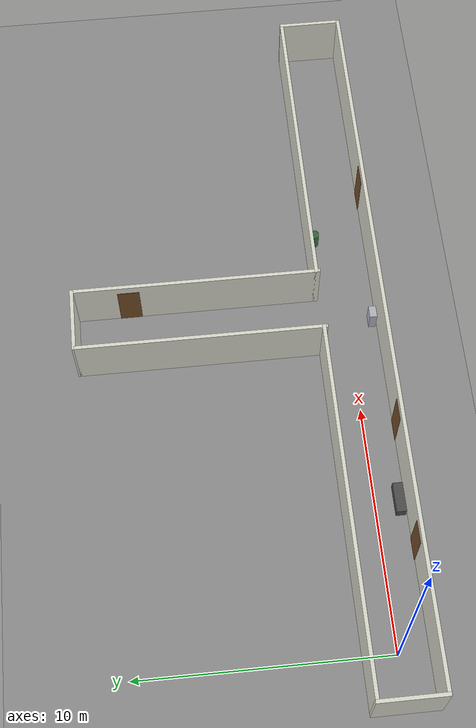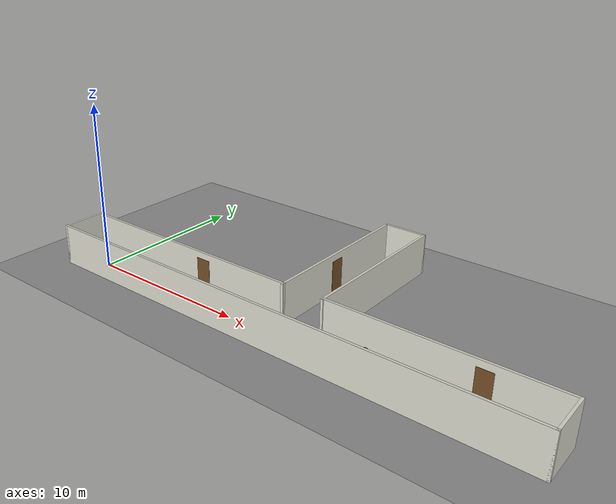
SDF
<?xml version="1.0"?>
<!-- Generated hallway world for C.A.$.H. Main corridor along +x (2.4 m wide, 30 m long)
     with a branch going +y at x=14. Robot spawns at the origin facing +x. -->
<sdf version="1.9">
  <world name="hallway">
    <physics name="1ms" type="ignored">
      <max_step_size>0.001</max_step_size>
      <real_time_factor>1.0</real_time_factor>
    </physics>

    <plugin filename="gz-sim-physics-system" name="gz::sim::systems::Physics"/>
    <plugin filename="gz-sim-user-commands-system" name="gz::sim::systems::UserCommands"/>
    <plugin filename="gz-sim-scene-broadcaster-system" name="gz::sim::systems::SceneBroadcaster"/>
    <plugin filename="gz-sim-sensors-system" name="gz::sim::systems::Sensors">
      <render_engine>ogre2</render_engine>
    </plugin>

    <gui fullscreen="0">
      <plugin filename="MinimalScene" name="3D View">
        <gz-gui>
          <title>3D View</title>
          <property type="bool" key="showTitleBar">false</property>
          <property type="string" key="state">docked</property>
        </gz-gui>
        <engine>ogre2</engine>
        <scene>scene</scene>
        <ambient_light>0.5 0.5 0.5</ambient_light>
        <background_color>0.8 0.8 0.8</background_color>
        <camera_pose>-6 -6 8 0 0.6 0.8</camera_pose>
      </plugin>
      <plugin filename="GzSceneManager" name="Scene Manager">
        <gz-gui><property key="state" type="string">floating</property><property key="width" type="double">5</property><property key="height" type="double">5</property><property key="showTitleBar" type="bool">false</property></gz-gui>
      </plugin>
      <plugin filename="InteractiveViewControl" name="Interactive view control">
        <gz-gui><property key="state" type="string">floating</property><property key="width" type="double">5</property><property key="height" type="double">5</property><property key="showTitleBar" type="bool">false</property></gz-gui>
      </plugin>
      <plugin filename="CameraTracking" name="Camera Tracking">
        <gz-gui><property key="state" type="string">floating</property><property key="width" type="double">5</property><property key="height" type="double">5</property><property key="showTitleBar" type="bool">false</property></gz-gui>
      </plugin>
      <plugin filename="WorldControl" name="World control">
        <gz-gui>
          <title>World control</title>
          <property type="bool" key="showTitleBar">false</property>
          <property type="bool" key="resizable">false</property>
          <property type="double" key="height">72</property>
          <property type="double" key="z">1</property>
          <property type="string" key="state">floating</property>
          <anchors target="3D View"><line own="left" target="left"/><line own="bottom" target="bottom"/></anchors>
        </gz-gui>
        <play_pause>true</play_pause>
        <step>true</step>
        <start_paused>false</start_paused>
      </plugin>
      <plugin filename="WorldStats" name="World stats">
        <gz-gui>
          <title>World stats</title>
          <property type="bool" key="showTitleBar">false</property>
          <property type="bool" key="resizable">false</property>
          <property type="double" key="height">110</property>
          <property type="double" key="width">290</property>
          <property type="double" key="z">1</property>
          <property type="string" key="state">floating</property>
          <anchors target="3D View"><line own="right" target="right"/><line own="bottom" target="bottom"/></anchors>
        </gz-gui>
        <sim_time>true</sim_time>
        <real_time>true</real_time>
        <real_time_factor>true</real_time_factor>
        <iterations>true</iterations>
      </plugin>
      <plugin filename="EntityTree" name="Entity tree"/>
      <plugin filename="VisualizeLidar" name="Visualize Lidar"/>
    </gui>

    <light type="directional" name="sun">
      <cast_shadows>false</cast_shadows>
      <pose>0 0 10 0 0 0</pose>
      <diffuse>0.9 0.9 0.9 1</diffuse>
      <specular>0.2 0.2 0.2 1</specular>
      <direction>-0.3 0.2 -0.9</direction>
    </light>

    <model name="floor">
      <static>true</static>
      <link name="link">
        <collision name="collision">
          <geometry><plane><normal>0 0 1</normal><size>80 80</size></plane></geometry>
        </collision>
        <visual name="visual">
          <geometry><plane><normal>0 0 1</normal><size>80 80</size></plane></geometry>
          <material><ambient>0.55 0.55 0.55 1</ambient><diffuse>0.55 0.55 0.55 1</diffuse></material>
        </visual>
      </link>
    </model>

    <model name="wall_south">
      <static>true</static>
      <pose>13.000 -1.275 1.250 0 0 0</pose>
      <link name="link">
        <collision name="collision"><geometry><box><size>30.300 0.150 2.500</size></box></geometry></collision>
        <visual name="visual">
          <geometry><box><size>30.300 0.150 2.500</size></box></geometry>
          <material><ambient>0.85 0.85 0.80 1</ambient><diffuse>0.85 0.85 0.80 1</diffuse></material>
        </visual>
      </link>
    </model>
    <model name="wall_north_a">
      <static>true</static>
      <pose>5.400 1.275 1.250 0 0 0</pose>
      <link name="link">
        <collision name="collision"><geometry><box><size>14.800 0.150 2.500</size></box></geometry></collision>
        <visual name="visual">
          <geometry><box><size>14.800 0.150 2.500</size></box></geometry>
          <material><ambient>0.85 0.85 0.80 1</ambient><diffuse>0.85 0.85 0.80 1</diffuse></material>
        </visual>
      </link>
    </model>
    <model name="wall_north_b">
      <static>true</static>
      <pose>21.600 1.275 1.250 0 0 0</pose>
      <link name="link">
        <collision name="collision"><geometry><box><size>12.800 0.150 2.500</size></box></geometry></collision>
        <visual name="visual">
          <geometry><box><size>12.800 0.150 2.500</size></box></geometry>
          <material><ambient>0.85 0.85 0.80 1</ambient><diffuse>0.85 0.85 0.80 1</diffuse></material>
        </visual>
      </link>
    </model>
    <model name="wall_west">
      <static>true</static>
      <pose>-2.075 0.000 1.250 0 0 0</pose>
      <link name="link">
        <collision name="collision"><geometry><box><size>0.150 2.700 2.500</size></box></geometry></collision>
        <visual name="visual">
          <geometry><box><size>0.150 2.700 2.500</size></box></geometry>
          <material><ambient>0.85 0.85 0.80 1</ambient><diffuse>0.85 0.85 0.80 1</diffuse></material>
        </visual>
      </link>
    </model>
    <model name="wall_east">
      <static>true</static>
      <pose>28.075 0.000 1.250 0 0 0</pose>
      <link name="link">
        <collision name="collision"><geometry><box><size>0.150 2.700 2.500</size></box></geometry></collision>
        <visual name="visual">
          <geometry><box><size>0.150 2.700 2.500</size></box></geometry>
          <material><ambient>0.85 0.85 0.80 1</ambient><diffuse>0.85 0.85 0.80 1</diffuse></material>
        </visual>
      </link>
    </model>
    <model name="branch_west">
      <static>true</static>
      <pose>12.725 6.200 1.250 0 0 0</pose>
      <link name="link">
        <collision name="collision"><geometry><box><size>0.150 10.150 2.500</size></box></geometry></collision>
        <visual name="visual">
          <geometry><box><size>0.150 10.150 2.500</size></box></geometry>
          <material><ambient>0.85 0.85 0.80 1</ambient><diffuse>0.85 0.85 0.80 1</diffuse></material>
        </visual>
      </link>
    </model>
    <model name="branch_east">
      <static>true</static>
      <pose>15.275 6.200 1.250 0 0 0</pose>
      <link name="link">
        <collision name="collision"><geometry><box><size>0.150 10.150 2.500</size></box></geometry></collision>
        <visual name="visual">
          <geometry><box><size>0.150 10.150 2.500</size></box></geometry>
          <material><ambient>0.85 0.85 0.80 1</ambient><diffuse>0.85 0.85 0.80 1</diffuse></material>
        </visual>
      </link>
    </model>
    <model name="branch_end">
      <static>true</static>
      <pose>14.000 11.275 1.250 0 0 0</pose>
      <link name="link">
        <collision name="collision"><geometry><box><size>2.700 0.150 2.500</size></box></geometry></collision>
        <visual name="visual">
          <geometry><box><size>2.700 0.150 2.500</size></box></geometry>
          <material><ambient>0.85 0.85 0.80 1</ambient><diffuse>0.85 0.85 0.80 1</diffuse></material>
        </visual>
      </link>
    </model>
    <model name="door_101">
      <static>true</static>
      <pose>4.000 -1.190 1.050 0 0 0</pose>
      <link name="link">
        <collision name="collision"><geometry><box><size>0.900 0.020 2.100</size></box></geometry></collision>
        <visual name="visual">
          <geometry><box><size>0.900 0.020 2.100</size></box></geometry>
          <material><ambient>0.45 0.30 0.15 1</ambient><diffuse>0.45 0.30 0.15 1</diffuse></material>
        </visual>
      </link>
    </model>
    <model name="door_102">
      <static>true</static>
      <pose>9.000 -1.190 1.050 0 0 0</pose>
      <link name="link">
        <collision name="collision"><geometry><box><size>0.900 0.020 2.100</size></box></geometry></collision>
        <visual name="visual">
          <geometry><box><size>0.900 0.020 2.100</size></box></geometry>
          <material><ambient>0.45 0.30 0.15 1</ambient><diffuse>0.45 0.30 0.15 1</diffuse></material>
        </visual>
      </link>
    </model>
    <model name="door_103">
      <static>true</static>
      <pose>20.000 -1.190 1.050 0 0 0</pose>
      <link name="link">
        <collision name="collision"><geometry><box><size>0.900 0.020 2.100</size></box></geometry></collision>
        <visual name="visual">
          <geometry><box><size>0.900 0.020 2.100</size></box></geometry>
          <material><ambient>0.45 0.30 0.15 1</ambient><diffuse>0.45 0.30 0.15 1</diffuse></material>
        </visual>
      </link>
    </model>
    <model name="door_104">
      <static>true</static>
      <pose>24.000 1.190 1.050 0 0 0</pose>
      <link name="link">
        <collision name="collision"><geometry><box><size>0.900 0.020 2.100</size></box></geometry></collision>
        <visual name="visual">
          <geometry><box><size>0.900 0.020 2.100</size></box></geometry>
          <material><ambient>0.45 0.30 0.15 1</ambient><diffuse>0.45 0.30 0.15 1</diffuse></material>
        </visual>
      </link>
    </model>
    <model name="door_105">
      <static>true</static>
      <pose>7.000 1.190 1.050 0 0 0</pose>
      <link name="link">
        <collision name="collision"><geometry><box><size>0.900 0.020 2.100</size></box></geometry></collision>
        <visual name="visual">
          <geometry><box><size>0.900 0.020 2.100</size></box></geometry>
          <material><ambient>0.45 0.30 0.15 1</ambient><diffuse>0.45 0.30 0.15 1</diffuse></material>
        </visual>
      </link>
    </model>
    <model name="door_201">
      <static>true</static>
      <pose>12.810 6.000 1.050 0 0 0</pose>
      <link name="link">
        <collision name="collision"><geometry><box><size>0.020 0.900 2.100</size></box></geometry></collision>
        <visual name="visual">
          <geometry><box><size>0.020 0.900 2.100</size></box></geometry>
          <material><ambient>0.45 0.30 0.15 1</ambient><diffuse>0.45 0.30 0.15 1</diffuse></material>
        </visual>
      </link>
    </model>
    <model name="door_202">
      <static>true</static>
      <pose>15.190 9.000 1.050 0 0 0</pose>
      <link name="link">
        <collision name="collision"><geometry><box><size>0.020 0.900 2.100</size></box></geometry></collision>
        <visual name="visual">
          <geometry><box><size>0.020 0.900 2.100</size></box></geometry>
          <material><ambient>0.45 0.30 0.15 1</ambient><diffuse>0.45 0.30 0.15 1</diffuse></material>
        </visual>
      </link>
    </model>
    <model name="bench">
      <static>true</static>
      <pose>6.000 -0.950 0.225 0 0 0</pose>
      <link name="link">
        <collision name="collision"><geometry><box><size>1.200 0.400 0.450</size></box></geometry></collision>
        <visual name="visual">
          <geometry><box><size>1.200 0.400 0.450</size></box></geometry>
          <material><ambient>0.3 0.3 0.3 1</ambient><diffuse>0.3 0.3 0.3 1</diffuse></material>
        </visual>
      </link>
    </model>
    <model name="trash_can">
      <static>true</static>
      <pose>18.000 0.950 0.400 0 0 0</pose>
      <link name="link">
        <collision name="collision"><geometry><cylinder><radius>0.2</radius><length>0.8</length></cylinder></geometry></collision>
        <visual name="visual">
          <geometry><cylinder><radius>0.2</radius><length>0.8</length></cylinder></geometry>
          <material><ambient>0.2 0.4 0.2 1</ambient><diffuse>0.2 0.4 0.2 1</diffuse></material>
        </visual>
      </link>
    </model>
    <model name="water_fountain">
      <static>true</static>
      <pose>14.000 -1.000 0.450 0 0 0</pose>
      <link name="link">
        <collision name="collision"><geometry><box><size>0.500 0.300 0.900</size></box></geometry></collision>
        <visual name="visual">
          <geometry><box><size>0.500 0.300 0.900</size></box></geometry>
          <material><ambient>0.7 0.7 0.75 1</ambient><diffuse>0.7 0.7 0.75 1</diffuse></material>
        </visual>
      </link>
    </model>
  </world>
</sdf>
